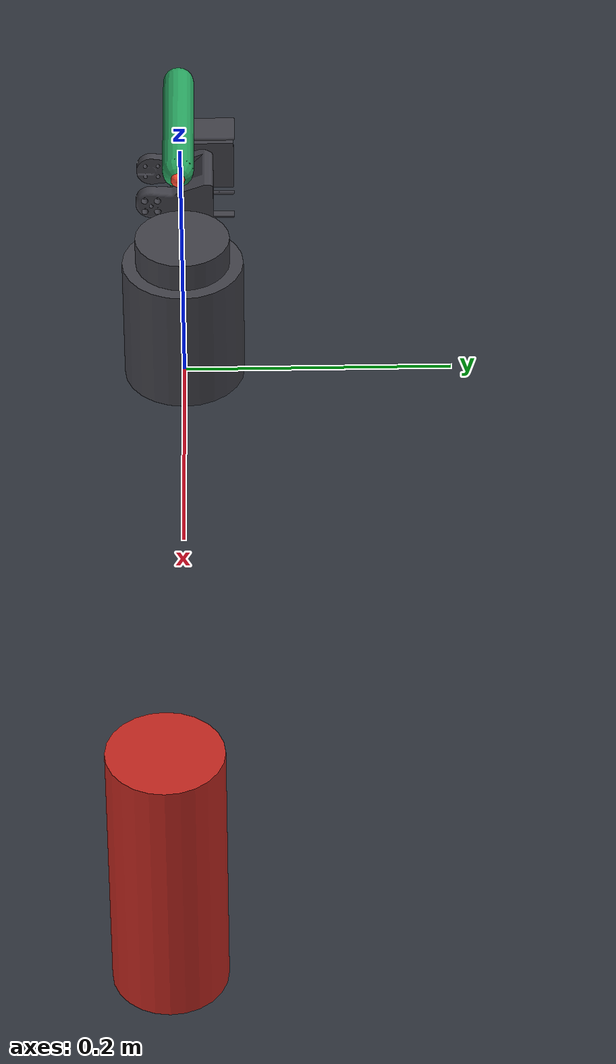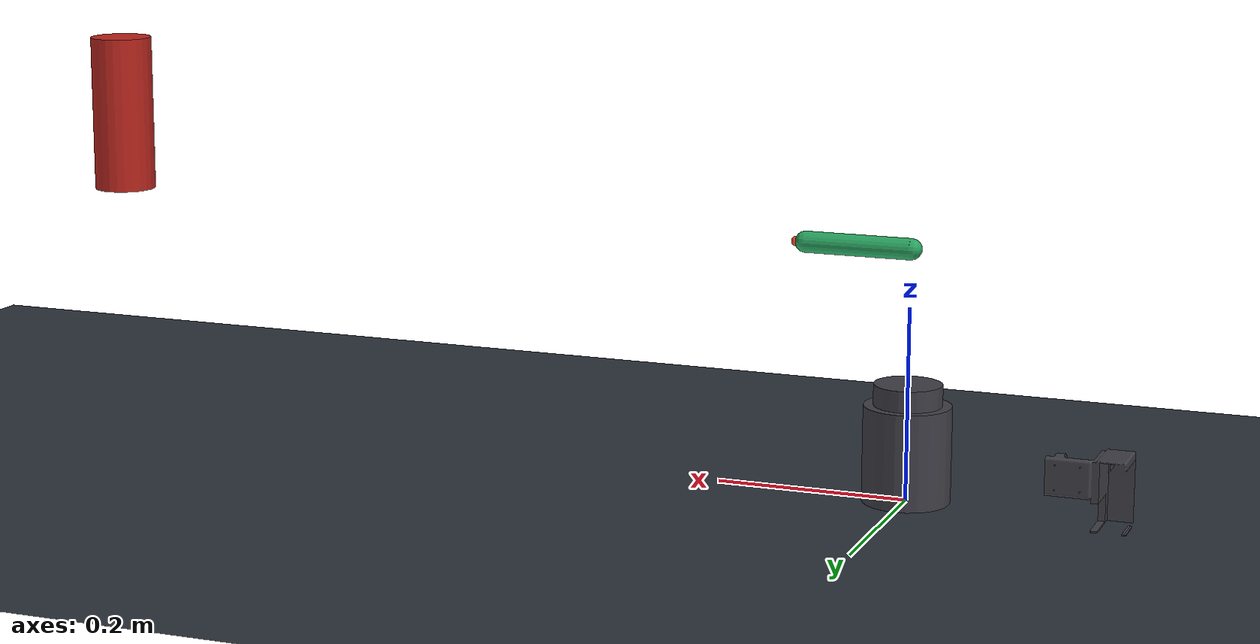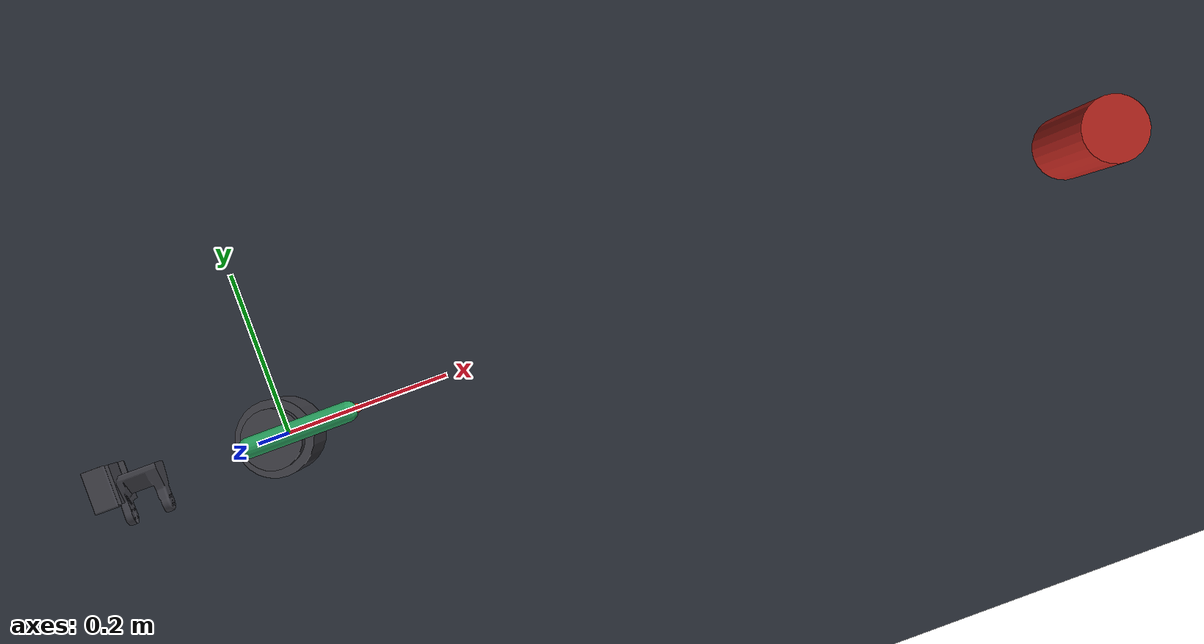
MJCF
<mujoco model="ratbot-turret">
  <compiler angle="radian" meshdir="assets" autolimits="true"/>
  <option gravity="0 0 -9.81" timestep="0.005"/>

  <visual>
    <global offwidth="1280" offheight="720" azimuth="130" elevation="-20"/>
  </visual>
  <statistic center="0 0 0.25" extent="1.2"/>

  <asset>
    <mesh name="turret_top" file="turret-with-jetson.stl" scale="0.001 0.001 0.001"/>
    <texture type="skybox" builtin="gradient" rgb1="0.08 0.09 0.12" rgb2="0.02 0.02 0.04" width="32" height="512"/>
    <texture name="grid" type="2d" builtin="checker" rgb1="0.15 0.17 0.20" rgb2="0.20 0.22 0.26" width="256" height="256"/>
    <material name="grid" texture="grid" texrepeat="8 8" reflectance="0.1"/>
    <material name="printed" rgba="0.25 0.25 0.28 1"/>
  </asset>

  <default>
    <default class="turret">
      <joint armature="0.05" damping="0.6" frictionloss="0.05"/>
      <position kp="18" kv="1.2" inheritrange="1"/>
    </default>
    <default class="visual">
      <geom type="mesh" group="2" contype="0" conaffinity="0"/>
    </default>
  </default>

  <worldbody>
    <light pos="0.5 -0.5 1.5" dir="-0.3 0.3 -1" diffuse="0.9 0.9 0.9"/>
    <geom name="floor" type="plane" size="2 2 0.05" material="grid"/>

    <!-- fixed base column -->
    <geom name="base" type="cylinder" pos="0 0 0.05" size="0.045 0.05" material="printed"/>

    <!-- yaw stage: carries the printed head (STL) -->
    <body name="yaw_stage" pos="0 0 0.10">
      <joint name="yaw" class="turret" type="hinge" axis="0 0 1" range="-1.5708 1.5708"/>
      <geom name="yaw_hub" type="cylinder" pos="0 0 0.01" size="0.035 0.012" material="printed" mass="0.15"/>
      <geom name="turret_top_visual" class="visual" mesh="turret_top" pos="0 0 0.02" material="printed"/>

      <!-- pitch stage: camera/barrel line -->
      <body name="pitch_stage" pos="0 0 0.16">
        <inertial pos="0.02 0 0" mass="0.35" diaginertia="4e-4 4e-4 2e-4"/>
        <joint name="pitch" class="turret" type="hinge" axis="0 1 0" range="-0.5236 0.5236"/>
        <geom name="barrel" type="capsule" fromto="0 0 0 0.11 0 0" size="0.011" rgba="0.16 0.65 0.38 1" mass="0.05"/>
        <site name="muzzle" pos="0.12 0 0" size="0.005" rgba="1 0.3 0.2 1"/>
        <camera name="bore" pos="0.05 0 0.03" xyaxes="0 -1 0 0 0 1" fovy="45"/>
      </body>
    </body>

    <!-- target: mocap body the env moves around (a floating can) -->
    <body name="target" mocap="true" pos="0.9 0 0.35">
      <geom name="target_can" type="cylinder" size="0.033 0.084" rgba="0.75 0.15 0.12 0.9" contype="0" conaffinity="0"/>
    </body>
  </worldbody>

  <actuator>
    <position class="turret" name="yaw" joint="yaw"/>
    <position class="turret" name="pitch" joint="pitch"/>
  </actuator>

  <keyframe>
    <key name="home" qpos="0 0" ctrl="0 0"/>
  </keyframe>
</mujoco>
